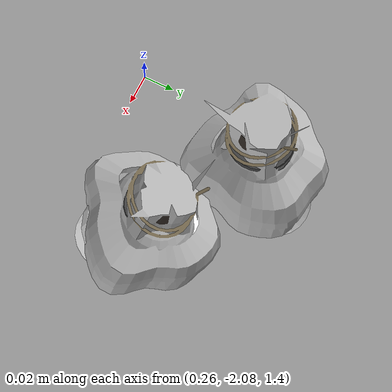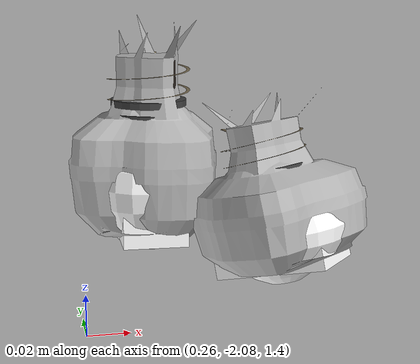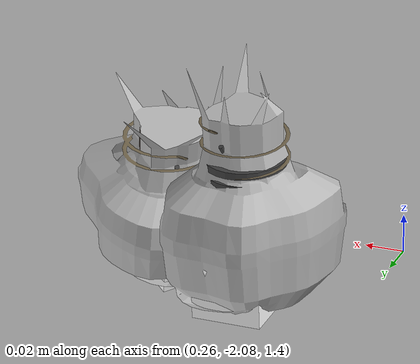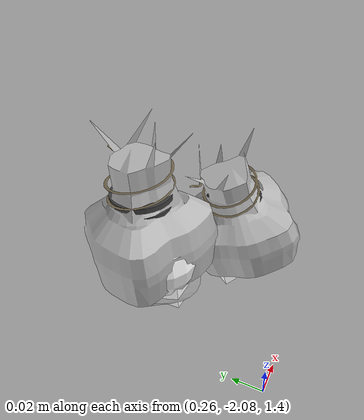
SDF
<sdf version="1.11">
 <world name="peach_orchard">
  <model name="ground">
   <static>true</static>
   <link name="link">
    <visual name="soil">
     <geometry><plane><normal>0 0 1</normal><size>32 22</size></plane></geometry>
     <material>
      <ambient>1 1 1 1</ambient>
      <diffuse>1 1 1 1</diffuse>
      <specular>0.1 0.1 0.1 1</specular>
      <pbr>
       <metal>
        <albedo_map>textures/soil_albedo.png</albedo_map>
        <normal_map type="tangent">textures/soil_normal.png</normal_map>
        <roughness>0.95</roughness>
        <metalness>0</metalness>
       </metal>
      </pbr>
     </material>
    </visual>
    <collision name="c_soil">
     <geometry><plane><normal>0 0 1</normal><size>32 22</size></plane></geometry>
    </collision>
   </link>
  </model>
  <model name="peach_tree_r2_t2_00">
   <pose>0.367713 -2.0307 1.40572 0 0.25999 2.1128</pose>
   <static>true</static>
   <link name="bag">
    <visual name="bag_mesh">
     <pose>0 0 0.0388267 0 0 0</pose>
     <geometry>
      <mesh><uri>model://peach_sim/meshes/bagged_peach.glb</uri><scale>1.04569 1.2581 0.882425</scale></mesh>
     </geometry>
    </visual>
    <visual name="body">
     <pose>0 0 0.0208267 0 0 0</pose>
     <geometry><ellipsoid><radii>0.0392134 0.0327107 0.0224929</radii></ellipsoid></geometry>
     <material>
      <ambient>1 1 1 1</ambient>
      <diffuse>1 1 1 1</diffuse>
      <specular>0.1 0.1 0.1 1</specular>
      <pbr>
       <metal>
        <albedo_map>textures/paper_bag_albedo.png</albedo_map>
        <normal_map type="tangent">textures/paper_bag_normal.png</normal_map>
        <roughness>0.72</roughness>
        <metalness>0</metalness>
       </metal>
      </pbr>
     </material>
    </visual>
    <visual name="bottom_fold">
     <pose>0 0 0.012 0 0 0.35</pose>
     <geometry><box><size>0.0607807 0.0376172 0.022</size></box></geometry>
     <material>
      <ambient>1 1 1 1</ambient>
      <diffuse>1 1 1 1</diffuse>
      <specular>0.1 0.1 0.1 1</specular>
      <pbr>
       <metal>
        <albedo_map>textures/paper_bag_albedo.png</albedo_map>
        <normal_map type="tangent">textures/paper_bag_normal.png</normal_map>
        <roughness>0.8</roughness>
        <metalness>0</metalness>
       </metal>
      </pbr>
     </material>
    </visual>
    <visual name="fruit">
     <pose>0 0 0.0216543 0 0 0</pose>
     <geometry><sphere><radius>0.0287605</radius></sphere></geometry>
     <material>
      <ambient>1 1 1 1</ambient>
      <diffuse>1 1 1 1</diffuse>
      <specular>0.1 0.1 0.1 1</specular>
      <pbr>
       <metal>
        <albedo_map>textures/fruit_skin_albedo.png</albedo_map>
        <normal_map type="tangent">textures/fruit_skin_normal.png</normal_map>
        <roughness>0.55</roughness>
        <metalness>0</metalness>
       </metal>
      </pbr>
     </material>
    </visual>
    <visual name="neck">
     <pose>0 0 0.0506534 0 0 0</pose>
     <geometry><cylinder><radius>0.013</radius><length>0.018</length></cylinder></geometry>
     <material>
      <ambient>1 1 1 1</ambient>
      <diffuse>1 1 1 1</diffuse>
      <specular>0.1 0.1 0.1 1</specular>
      <pbr>
       <metal>
        <albedo_map>textures/paper_bag_albedo.png</albedo_map>
        <normal_map type="tangent">textures/paper_bag_normal.png</normal_map>
        <roughness>0.75</roughness>
        <metalness>0</metalness>
       </metal>
      </pbr>
     </material>
    </visual>
    <visual name="gather">
     <pose>0 0 0.0316534 0 0 0</pose>
     <geometry><cylinder><radius>0.019</radius><length>0.02</length></cylinder></geometry>
     <material>
      <ambient>1 1 1 1</ambient>
      <diffuse>1 1 1 1</diffuse>
      <specular>0.1 0.1 0.1 1</specular>
      <pbr>
       <metal>
        <albedo_map>textures/paper_bag_albedo.png</albedo_map>
        <normal_map type="tangent">textures/paper_bag_normal.png</normal_map>
        <roughness>0.8</roughness>
        <metalness>0</metalness>
       </metal>
      </pbr>
     </material>
    </visual>
    <visual name="inner_paper">
     <pose>0 0 0.0556534 0 0 0</pose>
     <geometry><cylinder><radius>0.01</radius><length>0.008</length></cylinder></geometry>
     <material>
      <ambient>0.180392 0.14902 0.133333 1</ambient>
      <diffuse>0.180392 0.14902 0.133333 1</diffuse>
      <specular>0.1 0.1 0.1 1</specular>
     </material>
    </visual>
    <visual name="wire_0">
     <pose>0 0 0.0456534 0 0 0</pose>
     <geometry><cylinder><radius>0.0205</radius><length>0.0035</length></cylinder></geometry>
     <material>
      <ambient>0.25 0.25 0.25 1</ambient>
      <diffuse>0.25 0.25 0.25 1</diffuse>
      <specular>0.1 0.1 0.1 1</specular>
     </material>
    </visual>
    <visual name="wire_1">
     <pose>0 0 0.0526534 0 0 0</pose>
     <geometry><cylinder><radius>0.0205</radius><length>0.0035</length></cylinder></geometry>
     <material>
      <ambient>0.25 0.25 0.25 1</ambient>
      <diffuse>0.25 0.25 0.25 1</diffuse>
      <specular>0.1 0.1 0.1 1</specular>
     </material>
    </visual>
    <visual name="wire_tail">
     <pose>0.01 0 0.0536534 0 0.521618 0</pose>
     <geometry><cylinder><radius>0.0012</radius><length>0.026</length></cylinder></geometry>
     <material>
      <ambient>0.25 0.25 0.25 1</ambient>
      <diffuse>0.25 0.25 0.25 1</diffuse>
      <specular>0.1 0.1 0.1 1</specular>
     </material>
    </visual>
    <collision name="c_body">
     <pose>0 0 0.0208267 0 0 0</pose>
     <geometry><cylinder><radius>0.0392134</radius><length>0.0416534</length></cylinder></geometry>
    </collision>
   </link>
  </model>
  <model name="peach_tree_r2_t2_01">
   <pose>0.304029 -1.98091 1.41296 0 0.0485451 1.19619</pose>
   <static>true</static>
   <link name="bag">
    <visual name="bag_mesh">
     <pose>0 0 0.0498421 0 0 0</pose>
     <geometry>
      <mesh><uri>model://peach_sim/meshes/bagged_peach.glb</uri><scale>1.03847 1.16346 1.13278</scale></mesh>
     </geometry>
    </visual>
    <visual name="body">
     <pose>0 0 0.0318421 0 0 0</pose>
     <geometry><ellipsoid><radii>0.0389425 0.0302499 0.0343895</radii></ellipsoid></geometry>
     <material>
      <ambient>1 1 1 1</ambient>
      <diffuse>1 1 1 1</diffuse>
      <specular>0.1 0.1 0.1 1</specular>
      <pbr>
       <metal>
        <albedo_map>textures/paper_bag_albedo.png</albedo_map>
        <normal_map type="tangent">textures/paper_bag_normal.png</normal_map>
        <roughness>0.72</roughness>
        <metalness>0</metalness>
       </metal>
      </pbr>
     </material>
    </visual>
    <visual name="bottom_fold">
     <pose>0 0 0.012 0 0 0.35</pose>
     <geometry><box><size>0.0603608 0.0347874 0.022</size></box></geometry>
     <material>
      <ambient>1 1 1 1</ambient>
      <diffuse>1 1 1 1</diffuse>
      <specular>0.1 0.1 0.1 1</specular>
      <pbr>
       <metal>
        <albedo_map>textures/paper_bag_albedo.png</albedo_map>
        <normal_map type="tangent">textures/paper_bag_normal.png</normal_map>
        <roughness>0.8</roughness>
        <metalness>0</metalness>
       </metal>
      </pbr>
     </material>
    </visual>
    <visual name="fruit">
     <pose>0 0 0.0209046 0 0 0</pose>
     <geometry><sphere><radius>0.0279808</radius></sphere></geometry>
     <material>
      <ambient>1 1 1 1</ambient>
      <diffuse>1 1 1 1</diffuse>
      <specular>0.1 0.1 0.1 1</specular>
      <pbr>
       <metal>
        <albedo_map>textures/fruit_skin_albedo.png</albedo_map>
        <normal_map type="tangent">textures/fruit_skin_normal.png</normal_map>
        <roughness>0.55</roughness>
        <metalness>0</metalness>
       </metal>
      </pbr>
     </material>
    </visual>
    <visual name="neck">
     <pose>0 0 0.0726843 0 0 0</pose>
     <geometry><cylinder><radius>0.013</radius><length>0.018</length></cylinder></geometry>
     <material>
      <ambient>1 1 1 1</ambient>
      <diffuse>1 1 1 1</diffuse>
      <specular>0.1 0.1 0.1 1</specular>
      <pbr>
       <metal>
        <albedo_map>textures/paper_bag_albedo.png</albedo_map>
        <normal_map type="tangent">textures/paper_bag_normal.png</normal_map>
        <roughness>0.75</roughness>
        <metalness>0</metalness>
       </metal>
      </pbr>
     </material>
    </visual>
    <visual name="gather">
     <pose>0 0 0.0536843 0 0 0</pose>
     <geometry><cylinder><radius>0.019</radius><length>0.02</length></cylinder></geometry>
     <material>
      <ambient>1 1 1 1</ambient>
      <diffuse>1 1 1 1</diffuse>
      <specular>0.1 0.1 0.1 1</specular>
      <pbr>
       <metal>
        <albedo_map>textures/paper_bag_albedo.png</albedo_map>
        <normal_map type="tangent">textures/paper_bag_normal.png</normal_map>
        <roughness>0.8</roughness>
        <metalness>0</metalness>
       </metal>
      </pbr>
     </material>
    </visual>
    <visual name="inner_paper">
     <pose>0 0 0.0776843 0 0 0</pose>
     <geometry><cylinder><radius>0.01</radius><length>0.008</length></cylinder></geometry>
     <material>
      <ambient>0.180392 0.14902 0.133333 1</ambient>
      <diffuse>0.180392 0.14902 0.133333 1</diffuse>
      <specular>0.1 0.1 0.1 1</specular>
     </material>
    </visual>
    <visual name="wire_0">
     <pose>0 0 0.0676843 0 0 0</pose>
     <geometry><cylinder><radius>0.0205</radius><length>0.0035</length></cylinder></geometry>
     <material>
      <ambient>0.25 0.25 0.25 1</ambient>
      <diffuse>0.25 0.25 0.25 1</diffuse>
      <specular>0.1 0.1 0.1 1</specular>
     </material>
    </visual>
    <visual name="wire_1">
     <pose>0 0 0.0746843 0 0 0</pose>
     <geometry><cylinder><radius>0.0205</radius><length>0.0035</length></cylinder></geometry>
     <material>
      <ambient>0.25 0.25 0.25 1</ambient>
      <diffuse>0.25 0.25 0.25 1</diffuse>
      <specular>0.1 0.1 0.1 1</specular>
     </material>
    </visual>
    <visual name="wire_tail">
     <pose>0.01 0 0.0756843 0 0.521618 0</pose>
     <geometry><cylinder><radius>0.0012</radius><length>0.026</length></cylinder></geometry>
     <material>
      <ambient>0.25 0.25 0.25 1</ambient>
      <diffuse>0.25 0.25 0.25 1</diffuse>
      <specular>0.1 0.1 0.1 1</specular>
     </material>
    </visual>
    <collision name="c_body">
     <pose>0 0 0.0318421 0 0 0</pose>
     <geometry><cylinder><radius>0.0389425</radius><length>0.0636843</length></cylinder></geometry>
    </collision>
   </link>
  </model>
 </world>
</sdf>
